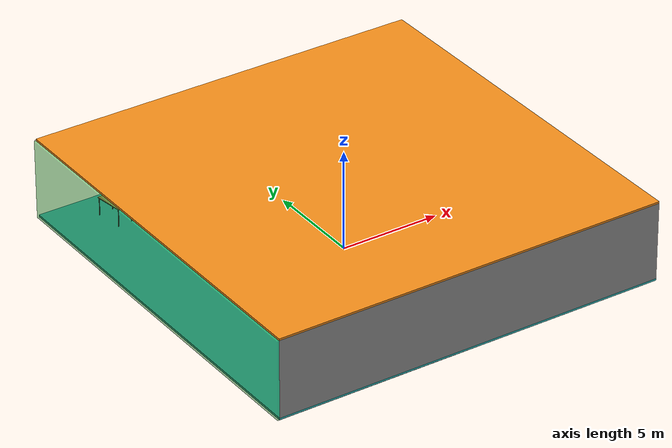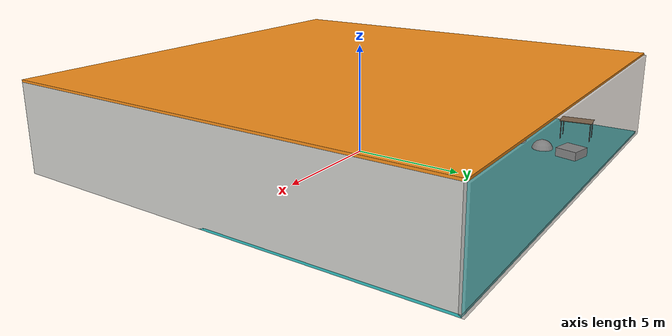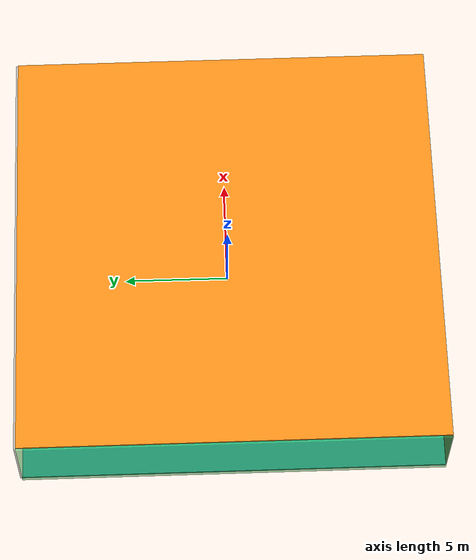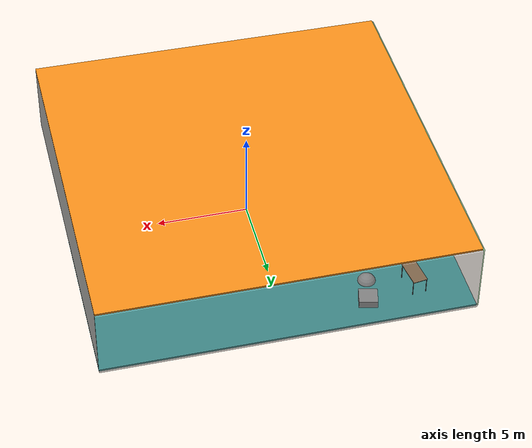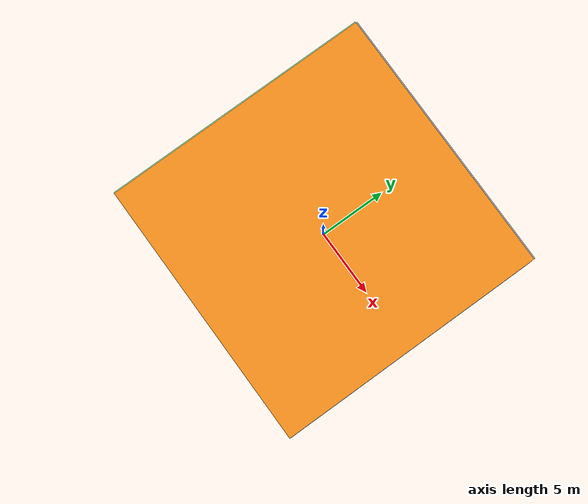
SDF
<sdf version="1.4">
 <world name="default">
  <physics type="ode">
   <max_step_size>0.001</max_step_size>
   <real_time_factor>1</real_time_factor>
   <real_time_update_rate>1000</real_time_update_rate>
   <gravity>0 0 -9.8</gravity>
  </physics>
  <scene><ambient>0.4 0.4 0.4 1</ambient><background>0.7 0.7 0.7 1</background><shadows>1</shadows></scene>
  <model name="Surrounding">
   <static>1</static>
   <link name="Ceiling">
    <collision name="Ceiling_Collision"><geometry><box><size>20 20 0.1</size></box></geometry></collision>
    <visual name="Ceiling_Visual">
     <geometry><box><size>20 20 0.1</size></box></geometry>
     <material>
      <script><uri>file://media/materials/scripts/gazebo.material</uri><name>Gazebo/Orange</name></script>
     </material>
    </visual>
    <pose>0 0 4.05 0 0 0</pose>
   </link>
   <link name="Wall_South">
    <collision name="Wall_South_Collision">
     <geometry><box><size>20 0 4</size></box></geometry>
     <pose>0 0 2 0 -0 0</pose>
    </collision>
    <visual name="Wall_South_Visual">
     <pose>0 0 2 0 -0 0</pose>
     <geometry><box><size>20 0 4</size></box></geometry>
     <material>
      <script><uri>file://media/materials/scripts/gazebo.material</uri><name>Gazebo/GreyGradientSky</name></script>
     </material>
    </visual>
    <velocity_decay><linear>0</linear><angular>0</angular></velocity_decay>
    <pose>0 -10 0 0 -0 0</pose>
   </link>
   <link name="Wall_East">
    <collision name="Wall_21_Collision">
     <geometry><box><size>20 0 4</size></box></geometry>
     <pose>0 0 2 0 -0 0</pose>
    </collision>
    <visual name="Wall_21_Visual">
     <pose>0 0 2 0 -0 0</pose>
     <geometry><box><size>20 0 4</size></box></geometry>
     <material>
      <script><uri>file://media/materials/scripts/gazebo.material</uri><name>Gazebo/CeilingTiled</name></script>
     </material>
    </visual>
    <velocity_decay><linear>0</linear><angular>0</angular></velocity_decay>
    <pose>10 0 0 0 -0 1.5708</pose>
   </link>
   <link name="Wall_North">
    <collision name="Wall_22_Collision">
     <geometry><box><size>20 0.2 4</size></box></geometry>
     <pose>0 0 2 0 -0 0</pose>
    </collision>
    <visual name="Wall_22_Visual">
     <pose>0 0 2 0 -0 0</pose>
     <geometry><box><size>20 0.2 4</size></box></geometry>
     <material>
      <script><uri>file://media/materials/scripts/gazebo.material</uri><name>Gazebo/GreyTransparent</name></script>
     </material>
    </visual>
    <velocity_decay><linear>0</linear><angular>0</angular></velocity_decay>
    <pose>0 10 0 0 -0 0</pose>
   </link>
   <link name="Wall_West">
    <collision name="Wall_23_Collision">
     <geometry><box><size>20 0.2 4</size></box></geometry>
     <pose>0 0 2 0 -0 0</pose>
    </collision>
    <visual name="Wall_23_Visual">
     <pose>0 0 2 0 -0 0</pose>
     <geometry><box><size>20 0.2 4</size></box></geometry>
     <material>
      <script><uri>file://media/materials/scripts/gazebo.material</uri><name>Gazebo/GreenTransparent</name></script>
     </material>
    </visual>
    <velocity_decay><linear>0</linear><angular>0</angular></velocity_decay>
    <pose>-10 0 0 0 0 -1.5708</pose>
   </link>
   <link name="Ground_link">
    <collision name="collision">
     <pose>0 0 .05 0 -0 0</pose>
     <geometry><box><size>20 20 0.1</size></box></geometry>
    </collision>
    <visual name="visual">
     <pose>0 0 .05 0 -0 0</pose>
     <geometry><box><size>20 20 0.1</size></box></geometry>
     <material>
      <script>
       <uri>file://media/materials/scripts/gazebo.material</uri>
       <name>Gazebo/TurquoiseGlowOutline</name>
      </script>
     </material>
    </visual>
   </link>
   <static>1</static>
  </model>
  <spherical_coordinates>
   <surface_model>EARTH_WGS84</surface_model>
   <latitude_deg>0</latitude_deg>
   <longitude_deg>0</longitude_deg>
   <elevation>0</elevation>
   <heading_deg>0</heading_deg>
  </spherical_coordinates>
  <light name="lightball_0" type="diffuse">
   <diffuse>0.8 0.8 0.8 1</diffuse>
   <specular>0.2 0.2 0.2 1</specular>
   <attenuation>
    <range>100</range>
    <constant>0.7</constant>
    <linear>0.01</linear>
    <quadratic>0.001</quadratic>
   </attenuation>
   <direction>-0.5 0.1 -0.9</direction>
   <pose>-9.86513829051 9.82273743125 0.56272666521 0 0 0</pose>
  </light>
  <light name="lightball_1" type="diffuse">
   <diffuse>0.8 0.8 0.8 1</diffuse>
   <specular>0.2 0.2 0.2 1</specular>
   <attenuation>
    <range>100</range>
    <constant>0.7</constant>
    <linear>0.01</linear>
    <quadratic>0.001</quadratic>
   </attenuation>
   <direction>-0.5 0.1 -0.9</direction>
   <pose>3.83596919107 1.90205053821 0.634351515836 0 0 0</pose>
  </light>
  <light name="lightball_2" type="diffuse">
   <diffuse>0.8 0.8 0.8 1</diffuse>
   <specular>0.2 0.2 0.2 1</specular>
   <attenuation>
    <range>100</range>
    <constant>0.7</constant>
    <linear>0.01</linear>
    <quadratic>0.001</quadratic>
   </attenuation>
   <direction>-0.5 0.1 -0.9</direction>
   <pose>-4.431435478 7.56939694124 3.46744716108 0 0 0</pose>
  </light>
  <light name="lightball_3" type="diffuse">
   <diffuse>0.8 0.8 0.8 1</diffuse>
   <specular>0.2 0.2 0.2 1</specular>
   <attenuation>
    <range>100</range>
    <constant>0.7</constant>
    <linear>0.01</linear>
    <quadratic>0.001</quadratic>
   </attenuation>
   <direction>-0.5 0.1 -0.9</direction>
   <pose>-3.33662346557 9.38481220912 3.00556237332 0 0 0</pose>
  </light>
  <light name="lightball_4" type="diffuse">
   <diffuse>0.8 0.8 0.8 1</diffuse>
   <specular>0.2 0.2 0.2 1</specular>
   <attenuation>
    <range>100</range>
    <constant>0.7</constant>
    <linear>0.01</linear>
    <quadratic>0.001</quadratic>
   </attenuation>
   <direction>-0.5 0.1 -0.9</direction>
   <pose>-3.35603474324 -9.28987677986 0.920028056398 0 0 0</pose>
  </light>
  <light name="lightball_5" type="diffuse">
   <diffuse>0.8 0.8 0.8 1</diffuse>
   <specular>0.2 0.2 0.2 1</specular>
   <attenuation>
    <range>100</range>
    <constant>0.7</constant>
    <linear>0.01</linear>
    <quadratic>0.001</quadratic>
   </attenuation>
   <direction>-0.5 0.1 -0.9</direction>
   <pose>-5.41631100539 3.63646218223 3.65260060813 0 0 0</pose>
  </light>
  <light name="lightball_6" type="diffuse">
   <diffuse>0.8 0.8 0.8 1</diffuse>
   <specular>0.2 0.2 0.2 1</specular>
   <attenuation>
    <range>100</range>
    <constant>0.7</constant>
    <linear>0.01</linear>
    <quadratic>0.001</quadratic>
   </attenuation>
   <direction>-0.5 0.1 -0.9</direction>
   <pose>-0.785099252934 -4.71104253665 3.68780767221 0 0 0</pose>
  </light>
  <light name="lightball_7" type="diffuse">
   <diffuse>0.8 0.8 0.8 1</diffuse>
   <specular>0.2 0.2 0.2 1</specular>
   <attenuation>
    <range>100</range>
    <constant>0.7</constant>
    <linear>0.01</linear>
    <quadratic>0.001</quadratic>
   </attenuation>
   <direction>-0.5 0.1 -0.9</direction>
   <pose>-1.00426542792 1.15717927185 1.43562632276 0 0 0</pose>
  </light>
  <include><uri>model://table</uri><pose>-7.23986276869 7.82872223105 0 0 0 1.7115957962</pose></include>
  <include><uri>model://cabinet</uri><pose>-4.5671465052 1.73529782912 0 0 0 1.03640371283</pose></include>
  <include>
   <uri>model://textured_shapes</uri>
   <pose>-4.89439518647 6.9864542828 0 0 0 2.90716040235</pose>
  </include>
  <include>
   <uri>model://construction_cone</uri>
   <pose>1.81796755121 -5.08237881454 0 0 0 1.31439296538</pose>
  </include>
  <include><uri>model://cabinet</uri><pose>2.20281216864 1.31984057981 0 0 0 1.94180824112</pose></include>
  <include><uri>model://cabinet</uri><pose>3.75381760406 -7.19625487653 0 0 0 2.27720954477</pose></include>
  <include><uri>model://table</uri><pose>7.84415819137 5.29137542474 0 0 0 1.00493168744</pose></include>
 </world>
</sdf>

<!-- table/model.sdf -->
<sdf version="1.5">
  <model name="table">
    <static>true</static>
    <link name="link">
      <collision name="surface">
        <pose>0 0 1.0 0 0 0</pose>
        <geometry>
          <box>
            <size>1.5 0.8 0.03</size>
          </box>
        </geometry>
        <surface>
          <friction>
            <ode>
              <mu>0.6</mu>
              <mu2>0.6</mu2>
            </ode>
          </friction>
        </surface>
      </collision>
      <visual name="visual1">
        <pose>0 0 1.0 0 0 0</pose>
        <geometry>
          <box>
            <size>1.5 0.8 0.03</size>
          </box>
        </geometry>
        <material>
          <script>
            <uri>model://media/materials/scripts/gazebo.material</uri>
            <name>Gazebo/Wood</name>
          </script>
        </material>
      </visual>
      <collision name="front_left_leg">
        <pose>0.68 0.38 0.5 0 0 0</pose>
        <geometry>
          <cylinder>
            <radius>0.02</radius>
            <length>1.0</length>
          </cylinder>
        </geometry>
      </collision>
      <visual name="front_left_leg">
        <pose>0.68 0.38 0.5 0 0 0</pose>
        <geometry>
          <cylinder>
            <radius>0.02</radius>
            <length>1.0</length>
          </cylinder>
        </geometry>
        <material>
          <script>
            <uri>model://media/materials/scripts/gazebo.material</uri>
            <name>Gazebo/Grey</name>
          </script>
        </material>
      </visual>
      <collision name="front_right_leg">
        <pose>0.68 -0.38 0.5 0 0 0</pose>
        <geometry>
          <cylinder>
            <radius>0.02</radius>
            <length>1.0</length>
          </cylinder>
        </geometry>
      </collision>
      <visual name="front_right_leg">
        <pose>0.68 -0.38 0.5 0 0 0</pose>
        <geometry>
          <cylinder>
            <radius>0.02</radius>
            <length>1.0</length>
          </cylinder>
        </geometry>
        <material>
          <script>
            <uri>model://media/materials/scripts/gazebo.material</uri>
            <name>Gazebo/Grey</name>
          </script>
        </material>
      </visual>
      <collision name="back_right_leg">
        <pose>-0.68 -0.38 0.5 0 0 0</pose>
        <geometry>
          <cylinder>
            <radius>0.02</radius>
            <length>1.0</length>
          </cylinder>
        </geometry>
      </collision>
      <visual name="back_right_leg">
        <pose>-0.68 -0.38 0.5 0 0 0</pose>
        <geometry>
          <cylinder>
            <radius>0.02</radius>
            <length>1.0</length>
          </cylinder>
        </geometry>
        <material>
          <script>
            <uri>model://media/materials/scripts/gazebo.material</uri>
            <name>Gazebo/Grey</name>
          </script>
        </material>
      </visual>
      <collision name="back_left_leg">
        <pose>-0.68 0.38 0.5 0 0 0</pose>
        <geometry>
          <cylinder>
            <radius>0.02</radius>
            <length>1.0</length>
          </cylinder>
        </geometry>
      </collision>
      <visual name="back_left_leg">
        <pose>-0.68 0.38 0.5 0 0 0</pose>
        <geometry>
          <cylinder>
            <radius>0.02</radius>
            <length>1.0</length>
          </cylinder>
        </geometry>
        <material>
          <script>
            <uri>model://media/materials/scripts/gazebo.material</uri>
            <name>Gazebo/Grey</name>
          </script>
        </material>
      </visual>
    </link>
  </model>
</sdf>

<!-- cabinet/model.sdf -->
<sdf version="1.5">
  <model name="cabinet">
    <static>true</static>
    <link name="cabinet_bottom_plate">
      <inertial>
        <pose>0 0 -1 0 0 0</pose>
        <inertia>
          <ixx>2.050000</ixx>
          <ixy>0</ixy>
          <ixz>0</ixz>
          <iyy>2.050000</iyy>
          <iyz>0</iyz>
          <izz>2.050000</izz>
        </inertia>
        <mass>25.000000</mass>
      </inertial>
      <collision name="cabinet_bottom_plate_geom">
        <pose>0 0 0.010000 0 0 0</pose>
        <geometry>
          <box>
            <size>0.450000 0.450000 0.020000</size>
          </box>
        </geometry>
      </collision>
      <visual name="cabinet_bottom_plate_geom_visual">
        <pose>0 0 0.010000 0 0 0</pose>
        <geometry>
          <box>
            <size>0.450000 0.450000 0.020000</size>
          </box>
        </geometry>
        <material>
          <script>
            <uri>model://media/materials/scripts/gazebo.material</uri>
            <name>Gazebo/Wood</name>
          </script>
        </material>
      </visual>
      <collision name="cabinet_bottom_plate_geom_cabinet_back_plate">
        <pose>0.235000 0 0.510000 0 0 0</pose>
        <geometry>
          <box>
            <size>0.020000 0.450000 1.020000</size>
          </box>
        </geometry>
      </collision>
      <visual name="cabinet_bottom_plate_geom_cabinet_back_plate_visual">
        <pose>0.235000 0 0.510000 0 0 0</pose>
        <geometry>
          <box>
            <size>0.020000 0.450000 1.020000</size>
          </box>
        </geometry>
        <material>
          <script>
            <uri>model://media/materials/scripts/gazebo.material</uri>
            <name>Gazebo/Wood</name>
          </script>
        </material>
      </visual>
      <collision name="cabinet_bottom_plate_geom_cabinet_left_plate">
        <pose>0 0.235000 0.510000 0 0 0</pose>
        <geometry>
          <box>
            <size>0.450000 0.020000 1.020000</size>
          </box>
        </geometry>
      </collision>
      <visual name="cabinet_bottom_plate_geom_cabinet_left_plate_visual">
        <pose>0 0.235000 0.510000 0 0 0</pose>
        <geometry>
          <box>
            <size>0.450000 0.020000 1.020000</size>
          </box>
        </geometry>
        <material>
          <script>
            <uri>model://media/materials/scripts/gazebo.material</uri>
            <name>Gazebo/Wood</name>
          </script>
        </material>
      </visual>
      <collision name="cabinet_bottom_plate_geom_cabinet_middle_plate">
        <pose>0 0 0.510000 0 0 0</pose>
        <geometry>
          <box>
            <size>0.450000 0.450000 0.020000</size>
          </box>
        </geometry>
      </collision>
      <visual name="cabinet_bottom_plate_geom_cabinet_middle_plate_visual">
        <pose>0 0 0.510000 0 0 0</pose>
        <geometry>
          <box>
            <size>0.450000 0.450000 0.020000</size>
          </box>
        </geometry>
        <material>
          <script>
            <uri>model://media/materials/scripts/gazebo.material</uri>
            <name>Gazebo/Wood</name>
          </script>
        </material>
      </visual>
      <collision name="cabinet_bottom_plate_geom_cabinet_right_plate">
        <pose>0 -0.235000 0.510000 0 0 0</pose>
        <geometry>
          <box>
            <size>0.450000 0.020000 1.020000</size>
          </box>
        </geometry>
      </collision>
      <visual name="cabinet_bottom_plate_geom_cabinet_right_plate_visual">
        <pose>0 -0.235000 0.510000 0 0 0</pose>
        <geometry>
          <box>
            <size>0.450000 0.020000 1.020000</size>
          </box>
        </geometry>
        <material>
          <script>
            <uri>model://media/materials/scripts/gazebo.material</uri>
            <name>Gazebo/Wood</name>
          </script>
        </material>
      </visual>
      <collision name="cabinet_bottom_plate_geom_cabinet_top_plate">
        <pose>0 0 1.010000 0 0 0</pose>
        <geometry>
          <box>
            <size>0.450000 0.450000 0.020000</size>
          </box>
        </geometry>
      </collision>
      <visual name="cabinet_bottom_plate_geom_cabinet_top_plate_visual">
        <pose>0 0 1.010000 0 0 0</pose>
        <geometry>
          <box>
            <size>0.450000 0.450000 0.020000</size>
          </box>
        </geometry>
        <material>
          <script>
            <uri>model://media/materials/scripts/gazebo.material</uri>
            <name>Gazebo/Wood</name>
          </script>
        </material>
      </visual>
    </link>
  </model>
</sdf>

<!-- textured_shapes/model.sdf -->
<sdf version="1.6">
  <model name="textured_shapes">
    <pose>0 0 0.5 0 0 0</pose>
    <link name="box">
      <pose>0 -1.5 0 0 0 0</pose>
      <collision name="collision">
        <geometry>
          <box>
            <size>1 1 1</size>
          </box>
        </geometry>
      </collision>
      <visual name="visual">
        <geometry>
          <box>
            <size>1 1 1</size>
          </box>
        </geometry>
        <material>
          <script>
            <uri>model://../model_source/models/textured_shapes/materials/scripts</uri>
            <uri>model://../model_source/models/textured_shapes/materials/textures</uri>
            <name>TexturedShape/Squares</name>
          </script>
        </material>
      </visual>
    </link>
    <link name="sphere">
      <collision name="collision">
        <geometry>
          <sphere>
            <radius>0.5</radius>
          </sphere>
        </geometry>
      </collision>
      <visual name="visual">
        <geometry>
          <sphere>
            <radius>0.5</radius>
          </sphere>
        </geometry>
        <material>
          <script>
            <uri>model://../model_source/models/textured_shapes/materials/scripts</uri>
            <uri>model://../model_source/models/textured_shapes/materials/textures</uri>
            <name>TexturedShape/Squares</name>
          </script>
        </material>
      </visual>
    </link>
    <link name="cylinder">
      <pose>0 1.5 0 0 0 0</pose>
      <collision name="collision">
        <geometry>
          <cylinder>
            <radius>0.5</radius>
            <length>1</length>
          </cylinder>
        </geometry>
      </collision>
      <visual name="visual">
        <geometry>
          <cylinder>
            <radius>0.5</radius>
            <length>1</length>
          </cylinder>
        </geometry>
        <material>
          <script>
            <uri>model://../model_source/models/textured_shapes/materials/scripts</uri>
            <uri>model://../model_source/models/textured_shapes/materials/textures</uri>
            <name>TexturedShape/Squares</name>
          </script>
        </material>
      </visual>
    </link>
  </model>
</sdf>

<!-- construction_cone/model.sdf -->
<sdf version="1.5">
  <model name="Construction Cone">
    <link name="link">
      <collision name="collision">
        <geometry>
          <mesh>
            <scale>10 10 10</scale>
            <uri>file://isr-testbed/construction_cone/meshes/construction_cone.dae</uri>
          </mesh>
        </geometry>
      </collision>
      <visual name="visual">
        <geometry>
          <mesh>
            <scale>10 10 10</scale>
            <uri>file://isr-testbed/construction_cone/meshes/construction_cone.dae</uri>
          </mesh>
        </geometry>
      </visual>
    </link>
  </model>
</sdf>
